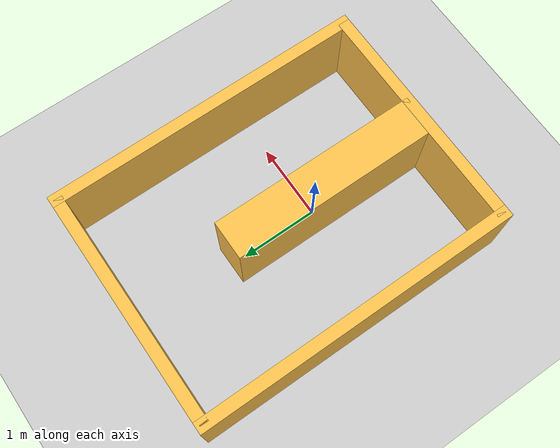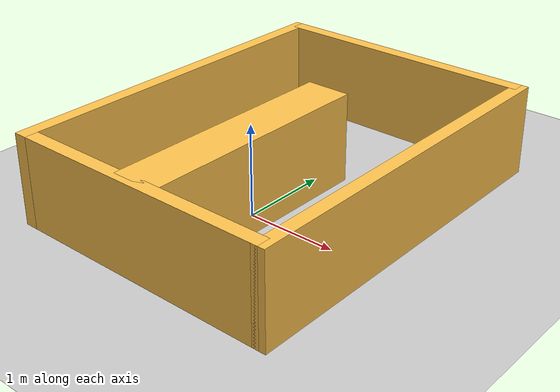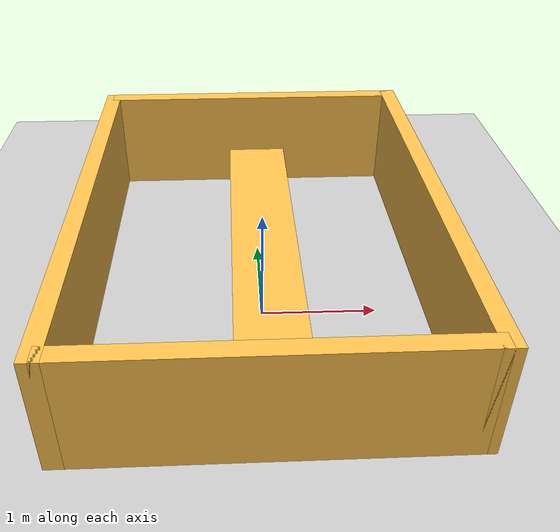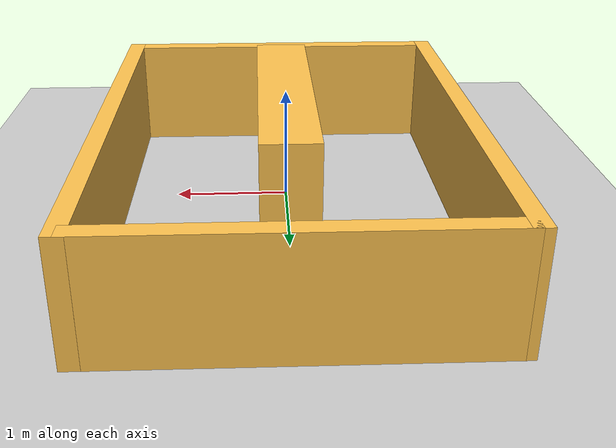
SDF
<sdf version='1.6'>
  <world name='default'>
    <!-- A global light source -->
    <include>
      <uri>model://sun</uri>
    </include>

    <!-- A ground plane -->
    <include>
      <uri>model://ground_plane</uri>
    </include>

    <physics type="ode">
      <real_time_update_rate>100.0</real_time_update_rate>
      <max_step_size>0.01</max_step_size>
      <real_time_factor>0.5</real_time_factor>
      <ode>
        <solver>
          <type>quick</type>
          <iters>150</iters>
          <precon_iters>0</precon_iters>
          <sor>1.400000</sor>
          <use_dynamic_moi_rescaling>1</use_dynamic_moi_rescaling>
        </solver>
        <constraints>
          <cfm>0.00001</cfm>
          <erp>0.2</erp>
          <contact_max_correcting_vel>2000.000000</contact_max_correcting_vel>
          <contact_surface_layer>0.01000</contact_surface_layer>
        </constraints>
      </ode>
    </physics>

    <!-- Load world -->
    <include>
      <uri>model://Sharp_turn</uri>
    </include>

    <scene>
      <ambient>0.4 0.4 0.4 1</ambient>
      <background>0.7 0.7 0.7 1</background>
      <shadows>false</shadows>
    </scene>

    <gui fullscreen='0'>
      <camera name='user_camera'>
        <pose>0.8 0.0 12.0 0 1.5708 0</pose>
        <view_controller>orbit</view_controller>
      </camera>
    </gui>
  </world>
</sdf>

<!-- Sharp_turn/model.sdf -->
<sdf version='1.5'>
  <model name='Sharp_turn'>
    <link name='Wall_10'>
      <pose frame=''>0 2.5 0 0 -0 3.14159</pose>
      <self_collide>0</self_collide>
      <kinematic>0</kinematic>
      <visual name='Wall_10_Visual'>
        <pose frame=''>0 0 0.5 0 -0 0</pose>
        <geometry>
          <box>
            <size>3 0.15 1</size>
          </box>
        </geometry>
        <material>
          <script>
            <uri>file://media/materials/scripts/gazebo.material</uri>
            <name>Gazebo/Grey</name>
          </script>
          <ambient>1 0.764706 0.305882 1</ambient>
          <shader type='pixel'/>
          <diffuse>0.7 0.7 0.7 1</diffuse>
          <specular>0.01 0.01 0.01 1</specular>
          <emissive>0 0 0 1</emissive>
        </material>
        <cast_shadows>1</cast_shadows>
        <transparency>0</transparency>
      </visual>
      <collision name='Wall_10_Collision'>
        <laser_retro>0</laser_retro>
        <max_contacts>10</max_contacts>
        <pose frame=''>0 0 0.5 0 -0 0</pose>
        <geometry>
          <box>
            <size>6 0.15 1</size>
          </box>
        </geometry>
        <surface>
          <friction>
            <ode>
              <mu>1</mu>
              <mu2>1</mu2>
              <fdir1>0 0 0</fdir1>
              <slip1>0</slip1>
              <slip2>0</slip2>
            </ode>
          </friction>
          <bounce>
            <restitution_coefficient>0</restitution_coefficient>
            <threshold>1e+06</threshold>
          </bounce>
          <contact>
            <collide_without_contact>0</collide_without_contact>
            <collide_without_contact_bitmask>1</collide_without_contact_bitmask>
            <collide_bitmask>1</collide_bitmask>
            <ode>
              <soft_cfm>0</soft_cfm>
              <soft_erp>0.2</soft_erp>
              <kp>1e+13</kp>
              <kd>1</kd>
              <max_vel>0.01</max_vel>
              <min_depth>0</min_depth>
            </ode>
            <bullet>
              <split_impulse>1</split_impulse>
              <split_impulse_penetration_threshold>-0.01</split_impulse_penetration_threshold>
              <soft_cfm>0</soft_cfm>
              <soft_erp>0.2</soft_erp>
              <kp>1e+13</kp>
              <kd>1</kd>
            </bullet>
          </contact>
        </surface>
      </collision>
    </link>
    <link name='Wall_11'>
      <pose frame=''>-1.5 0.5 0 0 0 -1.5708</pose>
      <self_collide>0</self_collide>
      <kinematic>0</kinematic>
      <visual name='Wall_11_Visual'>
        <pose frame=''>0 0 0.5 0 -0 0</pose>
        <geometry>
          <box>
            <size>4.15 0.15 1</size>
          </box>
        </geometry>
        <material>
          <script>
            <uri>file://media/materials/scripts/gazebo.material</uri>
            <name>Gazebo/Grey</name>
          </script>
          <ambient>1 0.764706 0.305882 1</ambient>
          <shader type='pixel'/>
          <diffuse>0.7 0.7 0.7 1</diffuse>
          <specular>0.01 0.01 0.01 1</specular>
          <emissive>0 0 0 1</emissive>
        </material>
        <cast_shadows>1</cast_shadows>
        <transparency>0</transparency>
      </visual>
      <collision name='Wall_11_Collision'>
        <laser_retro>0</laser_retro>
        <max_contacts>10</max_contacts>
        <pose frame=''>0 0 0.5 0 -0 0</pose>
        <geometry>
          <box>
            <size>6 0.15 1</size>
          </box>
        </geometry>
        <surface>
          <friction>
            <ode>
              <mu>1</mu>
              <mu2>1</mu2>
              <fdir1>0 0 0</fdir1>
              <slip1>0</slip1>
              <slip2>0</slip2>
            </ode>
          </friction>
          <bounce>
            <restitution_coefficient>0</restitution_coefficient>
            <threshold>1e+06</threshold>
          </bounce>
          <contact>
            <collide_without_contact>0</collide_without_contact>
            <collide_without_contact_bitmask>1</collide_without_contact_bitmask>
            <collide_bitmask>1</collide_bitmask>
            <ode>
              <soft_cfm>0</soft_cfm>
              <soft_erp>0.2</soft_erp>
              <kp>1e+13</kp>
              <kd>1</kd>
              <max_vel>0.01</max_vel>
              <min_depth>0</min_depth>
            </ode>
            <bullet>
              <split_impulse>1</split_impulse>
              <split_impulse_penetration_threshold>-0.01</split_impulse_penetration_threshold>
              <soft_cfm>0</soft_cfm>
              <soft_erp>0.2</soft_erp>
              <kp>1e+13</kp>
              <kd>1</kd>
            </bullet>
          </contact>
        </surface>
      </collision>
    </link>
    <link name='Wall_13'>
      <pose frame=''>0 0 0 0 -0 1.5708</pose>
      <self_collide>0</self_collide>
      <kinematic>0</kinematic>
      <visual name='Wall_13_Visual'>
        <pose frame=''>-0.15 0 0.5 0 -0 0</pose>
        <geometry>
          <box>
            <size>2.7 0.5 1</size>
          </box>
        </geometry>
        <material>
          <script>
            <uri>file://media/materials/scripts/gazebo.material</uri>
            <name>Gazebo/Grey</name>
          </script>
          <ambient>1 0.764706 0.305882 1</ambient>
          <shader type='pixel'/>
          <diffuse>0.7 0.7 0.7 1</diffuse>
          <specular>0.01 0.01 0.01 1</specular>
          <emissive>0 0 0 1</emissive>
        </material>
        <cast_shadows>1</cast_shadows>
        <transparency>0</transparency>
      </visual>
      <collision name='Wall_13_Collision'>
        <laser_retro>0</laser_retro>
        <max_contacts>10</max_contacts>
        <pose frame=''>0 0 0.5 0 -0 0</pose>
        <geometry>
          <box>
            <size>1.5 0.15 1</size>
          </box>
        </geometry>
        <surface>
          <friction>
            <ode>
              <mu>1</mu>
              <mu2>1</mu2>
              <fdir1>0 0 0</fdir1>
              <slip1>0</slip1>
              <slip2>0</slip2>
            </ode>
          </friction>
          <bounce>
            <restitution_coefficient>0</restitution_coefficient>
            <threshold>1e+06</threshold>
          </bounce>
          <contact>
            <collide_without_contact>0</collide_without_contact>
            <collide_without_contact_bitmask>1</collide_without_contact_bitmask>
            <collide_bitmask>1</collide_bitmask>
            <ode>
              <soft_cfm>0</soft_cfm>
              <soft_erp>0.2</soft_erp>
              <kp>1e+13</kp>
              <kd>1</kd>
              <max_vel>0.01</max_vel>
              <min_depth>0</min_depth>
            </ode>
            <bullet>
              <split_impulse>1</split_impulse>
              <split_impulse_penetration_threshold>-0.01</split_impulse_penetration_threshold>
              <soft_cfm>0</soft_cfm>
              <soft_erp>0.2</soft_erp>
              <kp>1e+13</kp>
              <kd>1</kd>
            </bullet>
          </contact>
        </surface>
      </collision>
    </link>
    <link name='Wall_6'>
      <pose frame=''>0 -1.5 0 0 -0 0</pose>
      <self_collide>0</self_collide>
      <kinematic>0</kinematic>
      <visual name='Wall_6_Visual'>
        <pose frame=''>0 0 0.5 0 -0 0</pose>
        <geometry>
          <box>
            <size>3 0.15 1</size>
          </box>
        </geometry>
        <material>
          <script>
            <uri>file://media/materials/scripts/gazebo.material</uri>
            <name>Gazebo/Grey</name>
          </script>
          <ambient>1 0.764706 0.305882 1</ambient>
          <shader type='pixel'/>
          <diffuse>0.7 0.7 0.7 1</diffuse>
          <specular>0.01 0.01 0.01 1</specular>
          <emissive>0 0 0 1</emissive>
        </material>
        <cast_shadows>1</cast_shadows>
        <transparency>0</transparency>
      </visual>
      <collision name='Wall_6_Collision'>
        <laser_retro>0</laser_retro>
        <max_contacts>10</max_contacts>
        <pose frame=''>0 0 0.5 0 -0 0</pose>
        <geometry>
          <box>
            <size>6 0.15 1</size>
          </box>
        </geometry>
        <surface>
          <friction>
            <ode>
              <mu>1</mu>
              <mu2>1</mu2>
              <fdir1>0 0 0</fdir1>
              <slip1>0</slip1>
              <slip2>0</slip2>
            </ode>
          </friction>
          <bounce>
            <restitution_coefficient>0</restitution_coefficient>
            <threshold>1e+06</threshold>
          </bounce>
          <contact>
            <collide_without_contact>0</collide_without_contact>
            <collide_without_contact_bitmask>1</collide_without_contact_bitmask>
            <collide_bitmask>1</collide_bitmask>
            <ode>
              <soft_cfm>0</soft_cfm>
              <soft_erp>0.2</soft_erp>
              <kp>1e+13</kp>
              <kd>1</kd>
              <max_vel>0.01</max_vel>
              <min_depth>0</min_depth>
            </ode>
            <bullet>
              <split_impulse>1</split_impulse>
              <split_impulse_penetration_threshold>-0.01</split_impulse_penetration_threshold>
              <soft_cfm>0</soft_cfm>
              <soft_erp>0.2</soft_erp>
              <kp>1e+13</kp>
              <kd>1</kd>
            </bullet>
          </contact>
        </surface>
      </collision>
    </link>
    <link name='Wall_7'>
      <pose frame=''>1.5 0.5 0 0 -0 1.5708</pose>
      <self_collide>0</self_collide>
      <kinematic>0</kinematic>
      <visual name='Wall_7_Visual'>
        <pose frame=''>0 0 0.5 0 -0 0</pose>
        <geometry>
          <box>
            <size>4.15 0.15 1</size>
          </box>
        </geometry>
        <material>
          <script>
            <uri>file://media/materials/scripts/gazebo.material</uri>
            <name>Gazebo/Grey</name>
          </script>
          <ambient>1 0.764706 0.305882 1</ambient>
          <shader type='pixel'/>
          <diffuse>0.7 0.7 0.7 1</diffuse>
          <specular>0.01 0.01 0.01 1</specular>
          <emissive>0 0 0 1</emissive>
        </material>
        <cast_shadows>1</cast_shadows>
        <transparency>0</transparency>
      </visual>
      <collision name='Wall_7_Collision'>
        <laser_retro>0</laser_retro>
        <max_contacts>10</max_contacts>
        <pose frame=''>0 0 0.5 0 -0 0</pose>
        <geometry>
          <box>
            <size>6 0.15 1</size>
          </box>
        </geometry>
        <surface>
          <friction>
            <ode>
              <mu>1</mu>
              <mu2>1</mu2>
              <fdir1>0 0 0</fdir1>
              <slip1>0</slip1>
              <slip2>0</slip2>
            </ode>
          </friction>
          <bounce>
            <restitution_coefficient>0</restitution_coefficient>
            <threshold>1e+06</threshold>
          </bounce>
          <contact>
            <collide_without_contact>0</collide_without_contact>
            <collide_without_contact_bitmask>1</collide_without_contact_bitmask>
            <collide_bitmask>1</collide_bitmask>
            <ode>
              <soft_cfm>0</soft_cfm>
              <soft_erp>0.2</soft_erp>
              <kp>1e+13</kp>
              <kd>1</kd>
              <max_vel>0.01</max_vel>
              <min_depth>0</min_depth>
            </ode>
            <bullet>
              <split_impulse>1</split_impulse>
              <split_impulse_penetration_threshold>-0.01</split_impulse_penetration_threshold>
              <soft_cfm>0</soft_cfm>
              <soft_erp>0.2</soft_erp>
              <kp>1e+13</kp>
              <kd>1</kd>
            </bullet>
          </contact>
        </surface>
      </collision>
    </link>
    <static>1</static>
    <allow_auto_disable>1</allow_auto_disable>
  </model>
</sdf>
